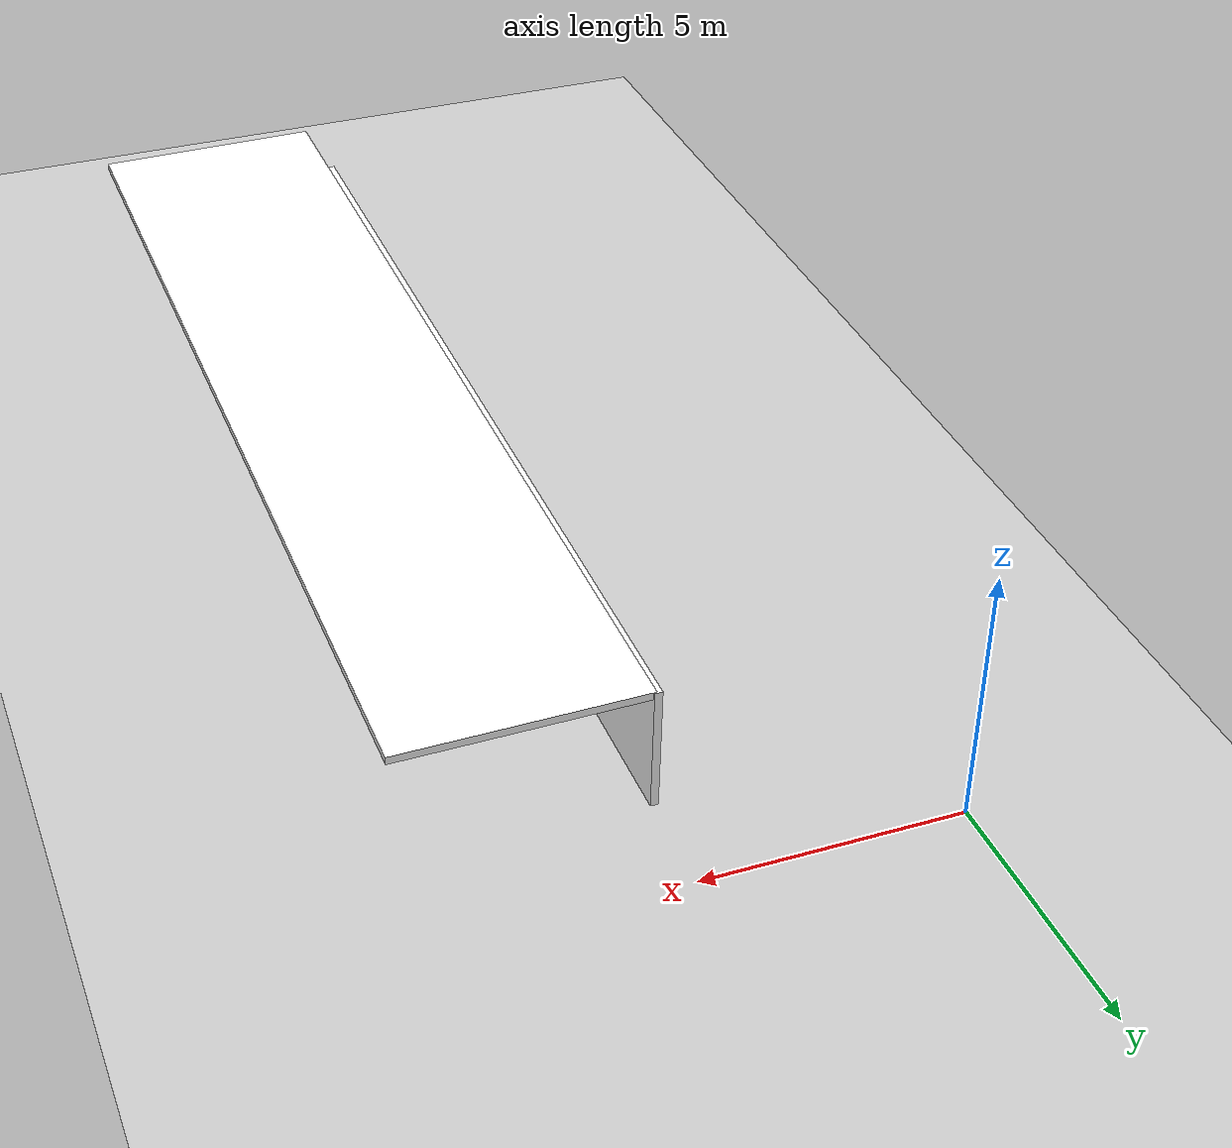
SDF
<sdf version="1.6">
 <world name="default">
  <model name="ground_plane">
   <static>1</static>
   <link name="link">
    <collision name="collision">
     <geometry><plane><normal>0 0 1</normal><size>5000 5000</size></plane></geometry>
     <surface><friction><ode><mu>1</mu><mu2>2</mu2></ode></friction></surface>
    </collision>
    <visual name="runway">
     <cast_shadows>0</cast_shadows>
     <geometry><plane><normal>0 0 1</normal><size>700 700</size></plane></geometry>
     <material>
      <script><uri>file://media/materials/scripts/gazebo.material</uri><name>Gazebo/Gray</name></script>
     </material>
    </visual>
   </link>
  </model>
  <model name="wall_with_door_0_clone">
   <link name="Wall_2">
    <inertial>
     <inertia><ixx>0</ixx><ixy>0</ixy><ixz>0</ixz><iyy>0</iyy><iyz>0</iyz><izz>0</izz></inertia>
     <mass>0</mass>
    </inertial>
    <visual name="Wall_2_Visual_4">
     <pose>2.1425 0 1.25 0 -0 0</pose>
     <geometry><box><size>20.0858 0.15 2.5</size></box></geometry>
     <material>
      <script>
       <uri>model://floor/materials/scripts</uri>
       <uri>model://floor/materials/textures</uri>
       <name>floor</name>
      </script>
      <ambient>1 1 1 1</ambient>
      <shader type="vertex"><normal_map>__default__</normal_map></shader>
     </material>
     <meta><layer>0</layer></meta>
    </visual>
    <collision name="Wall_2_Collision_8">
     <pose>45.239 0 1.25 0 -0 0</pose>
     <geometry><box><size>0.462241 0.15 2.5</size></box></geometry>
     <surface>
      <friction>
       <ode><mu>1</mu><mu2>1</mu2><fdir1>0 0 0</fdir1><slip1>0</slip1><slip2>0</slip2></ode>
       <torsional>
        <coefficient>1</coefficient>
        <patch_radius>0</patch_radius>
        <surface_radius>0</surface_radius>
        <use_patch_radius>1</use_patch_radius>
        <ode><slip>0</slip></ode>
       </torsional>
      </friction>
      <bounce><restitution_coefficient>0</restitution_coefficient><threshold>1e+06</threshold></bounce>
      <contact>
       <collide_without_contact>0</collide_without_contact>
       <collide_without_contact_bitmask>1</collide_without_contact_bitmask>
       <collide_bitmask>1</collide_bitmask>
       <ode>
        <soft_cfm>0</soft_cfm>
        <soft_erp>0.2</soft_erp>
        <kp>1e+13</kp>
        <kd>1</kd>
        <max_vel>0.01</max_vel>
        <min_depth>0</min_depth>
       </ode>
       <bullet>
        <split_impulse>1</split_impulse>
        <split_impulse_penetration_threshold>-0.01</split_impulse_penetration_threshold>
        <soft_cfm>0</soft_cfm>
        <soft_erp>0.2</soft_erp>
        <kp>1e+13</kp>
        <kd>1</kd>
       </bullet>
      </contact>
     </surface>
    </collision>
    <collision name="Wall_2_Collision_9">
     <pose>50.4005 0 1.25 0 -0 0</pose>
     <geometry><box><size>2.68417 0.15 2.5</size></box></geometry>
     <surface>
      <friction>
       <ode><mu>1</mu><mu2>1</mu2><fdir1>0 0 0</fdir1><slip1>0</slip1><slip2>0</slip2></ode>
       <torsional>
        <coefficient>1</coefficient>
        <patch_radius>0</patch_radius>
        <surface_radius>0</surface_radius>
        <use_patch_radius>1</use_patch_radius>
        <ode><slip>0</slip></ode>
       </torsional>
      </friction>
      <bounce><restitution_coefficient>0</restitution_coefficient><threshold>1e+06</threshold></bounce>
      <contact>
       <collide_without_contact>0</collide_without_contact>
       <collide_without_contact_bitmask>1</collide_without_contact_bitmask>
       <collide_bitmask>1</collide_bitmask>
       <ode>
        <soft_cfm>0</soft_cfm>
        <soft_erp>0.2</soft_erp>
        <kp>1e+13</kp>
        <kd>1</kd>
        <max_vel>0.01</max_vel>
        <min_depth>0</min_depth>
       </ode>
       <bullet>
        <split_impulse>1</split_impulse>
        <split_impulse_penetration_threshold>-0.01</split_impulse_penetration_threshold>
        <soft_cfm>0</soft_cfm>
        <soft_erp>0.2</soft_erp>
        <kp>1e+13</kp>
        <kd>1</kd>
       </bullet>
      </contact>
     </surface>
    </collision>
    <collision name="Door_2_Collision_1">
     <pose>-26.352 0 2.25 0 -0 0</pose>
     <geometry><box><size>0.995439 0.15 0.5</size></box></geometry>
     <surface>
      <friction>
       <ode><mu>1</mu><mu2>1</mu2><fdir1>0 0 0</fdir1><slip1>0</slip1><slip2>0</slip2></ode>
       <torsional>
        <coefficient>1</coefficient>
        <patch_radius>0</patch_radius>
        <surface_radius>0</surface_radius>
        <use_patch_radius>1</use_patch_radius>
        <ode><slip>0</slip></ode>
       </torsional>
      </friction>
      <bounce><restitution_coefficient>0</restitution_coefficient><threshold>1e+06</threshold></bounce>
      <contact>
       <collide_without_contact>0</collide_without_contact>
       <collide_without_contact_bitmask>1</collide_without_contact_bitmask>
       <collide_bitmask>1</collide_bitmask>
       <ode>
        <soft_cfm>0</soft_cfm>
        <soft_erp>0.2</soft_erp>
        <kp>1e+13</kp>
        <kd>1</kd>
        <max_vel>0.01</max_vel>
        <min_depth>0</min_depth>
       </ode>
       <bullet>
        <split_impulse>1</split_impulse>
        <split_impulse_penetration_threshold>-0.01</split_impulse_penetration_threshold>
        <soft_cfm>0</soft_cfm>
        <soft_erp>0.2</soft_erp>
        <kp>1e+13</kp>
        <kd>1</kd>
       </bullet>
      </contact>
     </surface>
    </collision>
    <collision name="Door_2_Collision_0">
     <pose>-33.729 0 2.25 0 -0 0</pose>
     <geometry><box><size>0.995439 0.15 0.5</size></box></geometry>
     <surface>
      <friction>
       <ode><mu>1</mu><mu2>1</mu2><fdir1>0 0 0</fdir1><slip1>0</slip1><slip2>0</slip2></ode>
       <torsional>
        <coefficient>1</coefficient>
        <patch_radius>0</patch_radius>
        <surface_radius>0</surface_radius>
        <use_patch_radius>1</use_patch_radius>
        <ode><slip>0</slip></ode>
       </torsional>
      </friction>
      <bounce><restitution_coefficient>0</restitution_coefficient><threshold>1e+06</threshold></bounce>
      <contact>
       <collide_without_contact>0</collide_without_contact>
       <collide_without_contact_bitmask>1</collide_without_contact_bitmask>
       <collide_bitmask>1</collide_bitmask>
       <ode>
        <soft_cfm>0</soft_cfm>
        <soft_erp>0.2</soft_erp>
        <kp>1e+13</kp>
        <kd>1</kd>
        <max_vel>0.01</max_vel>
        <min_depth>0</min_depth>
       </ode>
       <bullet>
        <split_impulse>1</split_impulse>
        <split_impulse_penetration_threshold>-0.01</split_impulse_penetration_threshold>
        <soft_cfm>0</soft_cfm>
        <soft_erp>0.2</soft_erp>
        <kp>1e+13</kp>
        <kd>1</kd>
       </bullet>
      </contact>
     </surface>
    </collision>
    <collision name="Door_2_Collision_2">
     <pose>-22.592 0 2.25 0 -0 0</pose>
     <geometry><box><size>0.995439 0.15 0.5</size></box></geometry>
     <surface>
      <friction>
       <ode><mu>1</mu><mu2>1</mu2><fdir1>0 0 0</fdir1><slip1>0</slip1><slip2>0</slip2></ode>
       <torsional>
        <coefficient>1</coefficient>
        <patch_radius>0</patch_radius>
        <surface_radius>0</surface_radius>
        <use_patch_radius>1</use_patch_radius>
        <ode><slip>0</slip></ode>
       </torsional>
      </friction>
      <bounce><restitution_coefficient>0</restitution_coefficient><threshold>1e+06</threshold></bounce>
      <contact>
       <collide_without_contact>0</collide_without_contact>
       <collide_without_contact_bitmask>1</collide_without_contact_bitmask>
       <collide_bitmask>1</collide_bitmask>
       <ode>
        <soft_cfm>0</soft_cfm>
        <soft_erp>0.2</soft_erp>
        <kp>1e+13</kp>
        <kd>1</kd>
        <max_vel>0.01</max_vel>
        <min_depth>0</min_depth>
       </ode>
       <bullet>
        <split_impulse>1</split_impulse>
        <split_impulse_penetration_threshold>-0.01</split_impulse_penetration_threshold>
        <soft_cfm>0</soft_cfm>
        <soft_erp>0.2</soft_erp>
        <kp>1e+13</kp>
        <kd>1</kd>
       </bullet>
      </contact>
     </surface>
    </collision>
    <collision name="Door_2_Collision_3">
     <pose>-19.043 0 2.25 0 -0 0</pose>
     <geometry><box><size>0.995439 0.15 0.5</size></box></geometry>
     <surface>
      <friction>
       <ode><mu>1</mu><mu2>1</mu2><fdir1>0 0 0</fdir1><slip1>0</slip1><slip2>0</slip2></ode>
       <torsional>
        <coefficient>1</coefficient>
        <patch_radius>0</patch_radius>
        <surface_radius>0</surface_radius>
        <use_patch_radius>1</use_patch_radius>
        <ode><slip>0</slip></ode>
       </torsional>
      </friction>
      <bounce><restitution_coefficient>0</restitution_coefficient><threshold>1e+06</threshold></bounce>
      <contact>
       <collide_without_contact>0</collide_without_contact>
       <collide_without_contact_bitmask>1</collide_without_contact_bitmask>
       <collide_bitmask>1</collide_bitmask>
       <ode>
        <soft_cfm>0</soft_cfm>
        <soft_erp>0.2</soft_erp>
        <kp>1e+13</kp>
        <kd>1</kd>
        <max_vel>0.01</max_vel>
        <min_depth>0</min_depth>
       </ode>
       <bullet>
        <split_impulse>1</split_impulse>
        <split_impulse_penetration_threshold>-0.01</split_impulse_penetration_threshold>
        <soft_cfm>0</soft_cfm>
        <soft_erp>0.2</soft_erp>
        <kp>1e+13</kp>
        <kd>1</kd>
       </bullet>
      </contact>
     </surface>
    </collision>
    <collision name="Door_2_Collision_4">
     <pose>23.328 0 2.25 0 -0 0</pose>
     <geometry><box><size>0.995439 0.15 0.5</size></box></geometry>
     <surface>
      <friction>
       <ode><mu>1</mu><mu2>1</mu2><fdir1>0 0 0</fdir1><slip1>0</slip1><slip2>0</slip2></ode>
       <torsional>
        <coefficient>1</coefficient>
        <patch_radius>0</patch_radius>
        <surface_radius>0</surface_radius>
        <use_patch_radius>1</use_patch_radius>
        <ode><slip>0</slip></ode>
       </torsional>
      </friction>
      <bounce><restitution_coefficient>0</restitution_coefficient><threshold>1e+06</threshold></bounce>
      <contact>
       <collide_without_contact>0</collide_without_contact>
       <collide_without_contact_bitmask>1</collide_without_contact_bitmask>
       <collide_bitmask>1</collide_bitmask>
       <ode>
        <soft_cfm>0</soft_cfm>
        <soft_erp>0.2</soft_erp>
        <kp>1e+13</kp>
        <kd>1</kd>
        <max_vel>0.01</max_vel>
        <min_depth>0</min_depth>
       </ode>
       <bullet>
        <split_impulse>1</split_impulse>
        <split_impulse_penetration_threshold>-0.01</split_impulse_penetration_threshold>
        <soft_cfm>0</soft_cfm>
        <soft_erp>0.2</soft_erp>
        <kp>1e+13</kp>
        <kd>1</kd>
       </bullet>
      </contact>
     </surface>
    </collision>
    <collision name="Wall_2_Collision_4">
     <pose>2.1425 0 1.25 0 -0 0</pose>
     <geometry><box><size>20.0858 0.15 2.5</size></box></geometry>
     <surface>
      <friction>
       <ode><mu>1</mu><mu2>1</mu2><fdir1>0 0 0</fdir1><slip1>0</slip1><slip2>0</slip2></ode>
       <torsional>
        <coefficient>1</coefficient>
        <patch_radius>0</patch_radius>
        <surface_radius>0</surface_radius>
        <use_patch_radius>1</use_patch_radius>
        <ode><slip>0</slip></ode>
       </torsional>
      </friction>
      <bounce><restitution_coefficient>0</restitution_coefficient><threshold>1e+06</threshold></bounce>
      <contact>
       <collide_without_contact>0</collide_without_contact>
       <collide_without_contact_bitmask>1</collide_without_contact_bitmask>
       <collide_bitmask>1</collide_bitmask>
       <ode>
        <soft_cfm>0</soft_cfm>
        <soft_erp>0.2</soft_erp>
        <kp>1e+13</kp>
        <kd>1</kd>
        <max_vel>0.01</max_vel>
        <min_depth>0</min_depth>
       </ode>
       <bullet>
        <split_impulse>1</split_impulse>
        <split_impulse_penetration_threshold>-0.01</split_impulse_penetration_threshold>
        <soft_cfm>0</soft_cfm>
        <soft_erp>0.2</soft_erp>
        <kp>1e+13</kp>
        <kd>1</kd>
       </bullet>
      </contact>
     </surface>
    </collision>
    <collision name="Wall_2_Collision_5">
     <pose>26.519 0 1.25 0 -0 0</pose>
     <geometry><box><size>2.18101 0.15 2.5</size></box></geometry>
     <surface>
      <friction>
       <ode><mu>1</mu><mu2>1</mu2><fdir1>0 0 0</fdir1><slip1>0</slip1><slip2>0</slip2></ode>
       <torsional>
        <coefficient>1</coefficient>
        <patch_radius>0</patch_radius>
        <surface_radius>0</surface_radius>
        <use_patch_radius>1</use_patch_radius>
        <ode><slip>0</slip></ode>
       </torsional>
      </friction>
      <bounce><restitution_coefficient>0</restitution_coefficient><threshold>1e+06</threshold></bounce>
      <contact>
       <collide_without_contact>0</collide_without_contact>
       <collide_without_contact_bitmask>1</collide_without_contact_bitmask>
       <collide_bitmask>1</collide_bitmask>
       <ode>
        <soft_cfm>0</soft_cfm>
        <soft_erp>0.2</soft_erp>
        <kp>1e+13</kp>
        <kd>1</kd>
        <max_vel>0.01</max_vel>
        <min_depth>0</min_depth>
       </ode>
       <bullet>
        <split_impulse>1</split_impulse>
        <split_impulse_penetration_threshold>-0.01</split_impulse_penetration_threshold>
        <soft_cfm>0</soft_cfm>
        <soft_erp>0.2</soft_erp>
        <kp>1e+13</kp>
        <kd>1</kd>
       </bullet>
      </contact>
     </surface>
    </collision>
    <collision name="Wall_2_Collision_6">
     <pose>35.369 0 1.25 0 -0 0</pose>
     <geometry><box><size>4.63597 0.15 2.5</size></box></geometry>
     <surface>
      <friction>
       <ode><mu>1</mu><mu2>1</mu2><fdir1>0 0 0</fdir1><slip1>0</slip1><slip2>0</slip2></ode>
       <torsional>
        <coefficient>1</coefficient>
        <patch_radius>0</patch_radius>
        <surface_radius>0</surface_radius>
        <use_patch_radius>1</use_patch_radius>
        <ode><slip>0</slip></ode>
       </torsional>
      </friction>
      <bounce><restitution_coefficient>0</restitution_coefficient><threshold>1e+06</threshold></bounce>
      <contact>
       <collide_without_contact>0</collide_without_contact>
       <collide_without_contact_bitmask>1</collide_without_contact_bitmask>
       <collide_bitmask>1</collide_bitmask>
       <ode>
        <soft_cfm>0</soft_cfm>
        <soft_erp>0.2</soft_erp>
        <kp>1e+13</kp>
        <kd>1</kd>
        <max_vel>0.01</max_vel>
        <min_depth>0</min_depth>
       </ode>
       <bullet>
        <split_impulse>1</split_impulse>
        <split_impulse_penetration_threshold>-0.01</split_impulse_penetration_threshold>
        <soft_cfm>0</soft_cfm>
        <soft_erp>0.2</soft_erp>
        <kp>1e+13</kp>
        <kd>1</kd>
       </bullet>
      </contact>
     </surface>
    </collision>
    <collision name="Wall_2_Collision_7">
     <pose>42.4015 0 1.25 0 -0 0</pose>
     <geometry><box><size>0.372084 0.15 2.5</size></box></geometry>
     <surface>
      <friction>
       <ode><mu>1</mu><mu2>1</mu2><fdir1>0 0 0</fdir1><slip1>0</slip1><slip2>0</slip2></ode>
       <torsional>
        <coefficient>1</coefficient>
        <patch_radius>0</patch_radius>
        <surface_radius>0</surface_radius>
        <use_patch_radius>1</use_patch_radius>
        <ode><slip>0</slip></ode>
       </torsional>
      </friction>
      <bounce><restitution_coefficient>0</restitution_coefficient><threshold>1e+06</threshold></bounce>
      <contact>
       <collide_without_contact>0</collide_without_contact>
       <collide_without_contact_bitmask>1</collide_without_contact_bitmask>
       <collide_bitmask>1</collide_bitmask>
       <ode>
        <soft_cfm>0</soft_cfm>
        <soft_erp>0.2</soft_erp>
        <kp>1e+13</kp>
        <kd>1</kd>
        <max_vel>0.01</max_vel>
        <min_depth>0</min_depth>
       </ode>
       <bullet>
        <split_impulse>1</split_impulse>
        <split_impulse_penetration_threshold>-0.01</split_impulse_penetration_threshold>
        <soft_cfm>0</soft_cfm>
        <soft_erp>0.2</soft_erp>
        <kp>1e+13</kp>
        <kd>1</kd>
       </bullet>
      </contact>
     </surface>
    </collision>
    <collision name="Wall_2_Collision_0">
     <pose>-42.3645 0 1.25 0 -0 0</pose>
     <geometry><box><size>7.59777 0.15 2.5</size></box></geometry>
     <surface>
      <friction>
       <ode><mu>1</mu><mu2>1</mu2><fdir1>0 0 0</fdir1><slip1>0</slip1><slip2>0</slip2></ode>
       <torsional>
        <coefficient>1</coefficient>
        <patch_radius>0</patch_radius>
        <surface_radius>0</surface_radius>
        <use_patch_radius>1</use_patch_radius>
        <ode><slip>0</slip></ode>
       </torsional>
      </friction>
      <bounce><restitution_coefficient>0</restitution_coefficient><threshold>1e+06</threshold></bounce>
      <contact>
       <collide_without_contact>0</collide_without_contact>
       <collide_without_contact_bitmask>1</collide_without_contact_bitmask>
       <collide_bitmask>1</collide_bitmask>
       <ode>
        <soft_cfm>0</soft_cfm>
        <soft_erp>0.2</soft_erp>
        <kp>1e+13</kp>
        <kd>1</kd>
        <max_vel>0.01</max_vel>
        <min_depth>0</min_depth>
       </ode>
       <bullet>
        <split_impulse>1</split_impulse>
        <split_impulse_penetration_threshold>-0.01</split_impulse_penetration_threshold>
        <soft_cfm>0</soft_cfm>
        <soft_erp>0.2</soft_erp>
        <kp>1e+13</kp>
        <kd>1</kd>
       </bullet>
      </contact>
     </surface>
    </collision>
    <collision name="Wall_2_Collision_1">
     <pose>-30.0405 0 1.25 0 -0 0</pose>
     <geometry><box><size>2.67522 0.15 2.5</size></box></geometry>
     <surface>
      <friction>
       <ode><mu>1</mu><mu2>1</mu2><fdir1>0 0 0</fdir1><slip1>0</slip1><slip2>0</slip2></ode>
       <torsional>
        <coefficient>1</coefficient>
        <patch_radius>0</patch_radius>
        <surface_radius>0</surface_radius>
        <use_patch_radius>1</use_patch_radius>
        <ode><slip>0</slip></ode>
       </torsional>
      </friction>
      <bounce><restitution_coefficient>0</restitution_coefficient><threshold>1e+06</threshold></bounce>
      <contact>
       <collide_without_contact>0</collide_without_contact>
       <collide_without_contact_bitmask>1</collide_without_contact_bitmask>
       <collide_bitmask>1</collide_bitmask>
       <ode>
        <soft_cfm>0</soft_cfm>
        <soft_erp>0.2</soft_erp>
        <kp>1e+13</kp>
        <kd>1</kd>
        <max_vel>0.01</max_vel>
        <min_depth>0</min_depth>
       </ode>
       <bullet>
        <split_impulse>1</split_impulse>
        <split_impulse_penetration_threshold>-0.01</split_impulse_penetration_threshold>
        <soft_cfm>0</soft_cfm>
        <soft_erp>0.2</soft_erp>
        <kp>1e+13</kp>
        <kd>1</kd>
       </bullet>
      </contact>
     </surface>
    </collision>
    <collision name="Wall_2_Collision_3">
     <pose>-20.8175 0 1.25 0 -0 0</pose>
     <geometry><box><size>0.771564 0.15 2.5</size></box></geometry>
     <surface>
      <friction>
       <ode><mu>1</mu><mu2>1</mu2><fdir1>0 0 0</fdir1><slip1>0</slip1><slip2>0</slip2></ode>
       <torsional>
        <coefficient>1</coefficient>
        <patch_radius>0</patch_radius>
        <surface_radius>0</surface_radius>
        <use_patch_radius>1</use_patch_radius>
        <ode><slip>0</slip></ode>
       </torsional>
      </friction>
      <bounce><restitution_coefficient>0</restitution_coefficient><threshold>1e+06</threshold></bounce>
      <contact>
       <collide_without_contact>0</collide_without_contact>
       <collide_without_contact_bitmask>1</collide_without_contact_bitmask>
       <collide_bitmask>1</collide_bitmask>
       <ode>
        <soft_cfm>0</soft_cfm>
        <soft_erp>0.2</soft_erp>
        <kp>1e+13</kp>
        <kd>1</kd>
        <max_vel>0.01</max_vel>
        <min_depth>0</min_depth>
       </ode>
       <bullet>
        <split_impulse>1</split_impulse>
        <split_impulse_penetration_threshold>-0.01</split_impulse_penetration_threshold>
        <soft_cfm>0</soft_cfm>
        <soft_erp>0.2</soft_erp>
        <kp>1e+13</kp>
        <kd>1</kd>
       </bullet>
      </contact>
     </surface>
    </collision>
    <collision name="Wall_2_Collision_2">
     <pose>-24.472 0 1.25 0 -0 0</pose>
     <geometry><box><size>0.876664 0.15 2.5</size></box></geometry>
     <surface>
      <friction>
       <ode><mu>1</mu><mu2>1</mu2><fdir1>0 0 0</fdir1><slip1>0</slip1><slip2>0</slip2></ode>
       <torsional>
        <coefficient>1</coefficient>
        <patch_radius>0</patch_radius>
        <surface_radius>0</surface_radius>
        <use_patch_radius>1</use_patch_radius>
        <ode><slip>0</slip></ode>
       </torsional>
      </friction>
      <bounce><restitution_coefficient>0</restitution_coefficient><threshold>1e+06</threshold></bounce>
      <contact>
       <collide_without_contact>0</collide_without_contact>
       <collide_without_contact_bitmask>1</collide_without_contact_bitmask>
       <collide_bitmask>1</collide_bitmask>
       <ode>
        <soft_cfm>0</soft_cfm>
        <soft_erp>0.2</soft_erp>
        <kp>1e+13</kp>
        <kd>1</kd>
        <max_vel>0.01</max_vel>
        <min_depth>0</min_depth>
       </ode>
       <bullet>
        <split_impulse>1</split_impulse>
        <split_impulse_penetration_threshold>-0.01</split_impulse_penetration_threshold>
        <soft_cfm>0</soft_cfm>
        <soft_erp>0.2</soft_erp>
        <kp>1e+13</kp>
        <kd>1</kd>
       </bullet>
      </contact>
     </surface>
    </collision>
    <collision name="Door_2_Collision_5">
     <pose>29.71 0 2.25 0 -0 0</pose>
     <geometry><box><size>0.995439 0.15 0.5</size></box></geometry>
     <surface>
      <friction>
       <ode><mu>1</mu><mu2>1</mu2><fdir1>0 0 0</fdir1><slip1>0</slip1><slip2>0</slip2></ode>
       <torsional>
        <coefficient>1</coefficient>
        <patch_radius>0</patch_radius>
        <surface_radius>0</surface_radius>
        <use_patch_radius>1</use_patch_radius>
        <ode><slip>0</slip></ode>
       </torsional>
      </friction>
      <bounce><restitution_coefficient>0</restitution_coefficient><threshold>1e+06</threshold></bounce>
      <contact>
       <collide_without_contact>0</collide_without_contact>
       <collide_without_contact_bitmask>1</collide_without_contact_bitmask>
       <collide_bitmask>1</collide_bitmask>
       <ode>
        <soft_cfm>0</soft_cfm>
        <soft_erp>0.2</soft_erp>
        <kp>1e+13</kp>
        <kd>1</kd>
        <max_vel>0.01</max_vel>
        <min_depth>0</min_depth>
       </ode>
       <bullet>
        <split_impulse>1</split_impulse>
        <split_impulse_penetration_threshold>-0.01</split_impulse_penetration_threshold>
        <soft_cfm>0</soft_cfm>
        <soft_erp>0.2</soft_erp>
        <kp>1e+13</kp>
        <kd>1</kd>
       </bullet>
      </contact>
     </surface>
    </collision>
    <collision name="Door_2_Collision_6">
     <pose>41.028 0 2.25 0 -0 0</pose>
     <geometry><box><size>0.995439 0.15 0.5</size></box></geometry>
     <surface>
      <friction>
       <ode><mu>1</mu><mu2>1</mu2><fdir1>0 0 0</fdir1><slip1>0</slip1><slip2>0</slip2></ode>
       <torsional>
        <coefficient>1</coefficient>
        <patch_radius>0</patch_radius>
        <surface_radius>0</surface_radius>
        <use_patch_radius>1</use_patch_radius>
        <ode><slip>0</slip></ode>
       </torsional>
      </friction>
      <bounce><restitution_coefficient>0</restitution_coefficient><threshold>1e+06</threshold></bounce>
      <contact>
       <collide_without_contact>0</collide_without_contact>
       <collide_without_contact_bitmask>1</collide_without_contact_bitmask>
       <collide_bitmask>1</collide_bitmask>
       <ode>
        <soft_cfm>0</soft_cfm>
        <soft_erp>0.2</soft_erp>
        <kp>1e+13</kp>
        <kd>1</kd>
        <max_vel>0.01</max_vel>
        <min_depth>0</min_depth>
       </ode>
       <bullet>
        <split_impulse>1</split_impulse>
        <split_impulse_penetration_threshold>-0.01</split_impulse_penetration_threshold>
        <soft_cfm>0</soft_cfm>
        <soft_erp>0.2</soft_erp>
        <kp>1e+13</kp>
        <kd>1</kd>
       </bullet>
      </contact>
     </surface>
    </collision>
    <collision name="Door_2_Collision_8">
     <pose>46.703 0 2.25 0 -0 0</pose>
     <geometry><box><size>0.995439 0.15 0.5</size></box></geometry>
     <surface>
      <friction>
       <ode><mu>1</mu><mu2>1</mu2><fdir1>0 0 0</fdir1><slip1>0</slip1><slip2>0</slip2></ode>
       <torsional>
        <coefficient>1</coefficient>
        <patch_radius>0</patch_radius>
        <surface_radius>0</surface_radius>
        <use_patch_radius>1</use_patch_radius>
        <ode><slip>0</slip></ode>
       </torsional>
      </friction>
      <bounce><restitution_coefficient>0</restitution_coefficient><threshold>1e+06</threshold></bounce>
      <contact>
       <collide_without_contact>0</collide_without_contact>
       <collide_without_contact_bitmask>1</collide_without_contact_bitmask>
       <collide_bitmask>1</collide_bitmask>
       <ode>
        <soft_cfm>0</soft_cfm>
        <soft_erp>0.2</soft_erp>
        <kp>1e+13</kp>
        <kd>1</kd>
        <max_vel>0.01</max_vel>
        <min_depth>0</min_depth>
       </ode>
       <bullet>
        <split_impulse>1</split_impulse>
        <split_impulse_penetration_threshold>-0.01</split_impulse_penetration_threshold>
        <soft_cfm>0</soft_cfm>
        <soft_erp>0.2</soft_erp>
        <kp>1e+13</kp>
        <kd>1</kd>
       </bullet>
      </contact>
     </surface>
    </collision>
    <collision name="Door_2_Collision_7">
     <pose>43.775 0 2.25 0 -0 0</pose>
     <geometry><box><size>0.995439 0.15 0.5</size></box></geometry>
     <surface>
      <friction>
       <ode><mu>1</mu><mu2>1</mu2><fdir1>0 0 0</fdir1><slip1>0</slip1><slip2>0</slip2></ode>
       <torsional>
        <coefficient>1</coefficient>
        <patch_radius>0</patch_radius>
        <surface_radius>0</surface_radius>
        <use_patch_radius>1</use_patch_radius>
        <ode><slip>0</slip></ode>
       </torsional>
      </friction>
      <bounce><restitution_coefficient>0</restitution_coefficient><threshold>1e+06</threshold></bounce>
      <contact>
       <collide_without_contact>0</collide_without_contact>
       <collide_without_contact_bitmask>1</collide_without_contact_bitmask>
       <collide_bitmask>1</collide_bitmask>
       <ode>
        <soft_cfm>0</soft_cfm>
        <soft_erp>0.2</soft_erp>
        <kp>1e+13</kp>
        <kd>1</kd>
        <max_vel>0.01</max_vel>
        <min_depth>0</min_depth>
       </ode>
       <bullet>
        <split_impulse>1</split_impulse>
        <split_impulse_penetration_threshold>-0.01</split_impulse_penetration_threshold>
        <soft_cfm>0</soft_cfm>
        <soft_erp>0.2</soft_erp>
        <kp>1e+13</kp>
        <kd>1</kd>
       </bullet>
      </contact>
     </surface>
    </collision>
   </link>
   <static>1</static>
   <pose>4.922 -9.8961 0 0 0 -1.57544</pose>
  </model>
  <model name="roof_2">
   <link name="Wall_0">
    <pose>-1.15603 -0.002112 0.093543 0 -0 0</pose>
    <inertial>
     <inertia><ixx>0</ixx><ixy>0</ixy><ixz>0</ixz><iyy>0</iyy><iyz>0</iyz><izz>0</izz></inertia>
     <mass>0</mass>
    </inertial>
    <visual name="Wall_0_Visual">
     <pose>0 0 1.25 0 -0 0</pose>
     <geometry><box><size>21.9013 0.15 4.72922</size></box></geometry>
     <material>
      <script>
       <uri>model://floor/materials/scripts</uri>
       <uri>model://floor/materials/textures</uri>
       <name>floor</name>
      </script>
      <ambient>1 1 1 1</ambient>
     </material>
     <meta><layer>0</layer></meta>
    </visual>
    <collision name="Wall_0_Collision">
     <pose>0 0 1.25 0 -0 0</pose>
     <geometry><box><size>21.9013 0.15 4.72922</size></box></geometry>
     <surface>
      <friction>
       <ode><mu>1</mu><mu2>1</mu2><fdir1>0 0 0</fdir1><slip1>0</slip1><slip2>0</slip2></ode>
       <torsional>
        <coefficient>1</coefficient>
        <patch_radius>0</patch_radius>
        <surface_radius>0</surface_radius>
        <use_patch_radius>1</use_patch_radius>
        <ode><slip>0</slip></ode>
       </torsional>
      </friction>
      <bounce><restitution_coefficient>0</restitution_coefficient><threshold>1e+06</threshold></bounce>
      <contact>
       <collide_without_contact>0</collide_without_contact>
       <collide_without_contact_bitmask>1</collide_without_contact_bitmask>
       <collide_bitmask>1</collide_bitmask>
       <ode>
        <soft_cfm>0</soft_cfm>
        <soft_erp>0.2</soft_erp>
        <kp>1e+13</kp>
        <kd>1</kd>
        <max_vel>0.01</max_vel>
        <min_depth>0</min_depth>
       </ode>
       <bullet>
        <split_impulse>1</split_impulse>
        <split_impulse_penetration_threshold>-0.01</split_impulse_penetration_threshold>
        <soft_cfm>0</soft_cfm>
        <soft_erp>0.2</soft_erp>
        <kp>1e+13</kp>
        <kd>1</kd>
       </bullet>
      </contact>
     </surface>
    </collision>
   </link>
   <static>1</static>
   <pose>5.98362 -11.8211 2.44319 1.58158 0.0027 1.56949</pose>
  </model>
 </world>
</sdf>
